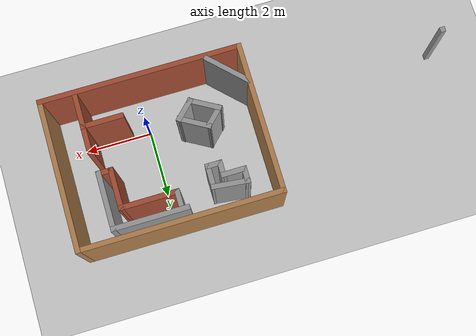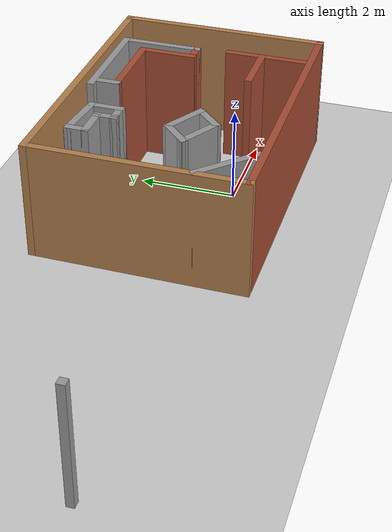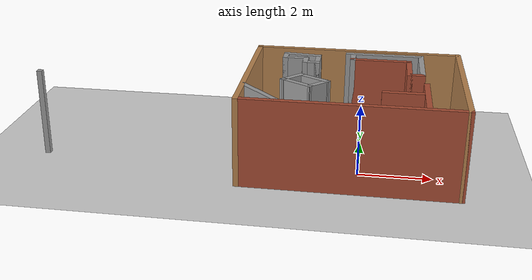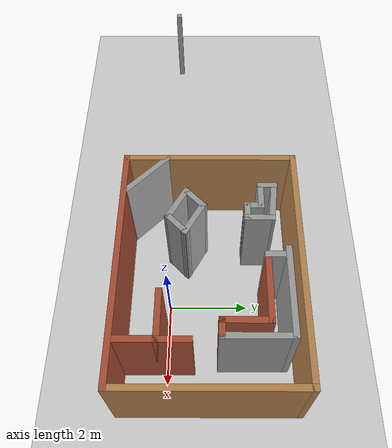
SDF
<sdf version="1.7">
 <world name="default">
  <light name="sun" type="directional">
   <pose>0 0 10 0 -0 0</pose>
   <diffuse>0.8 0.8 0.8 1</diffuse>
   <specular>0.2 0.2 0.2 1</specular>
   <attenuation>
    <range>1000</range>
    <constant>0.9</constant>
    <linear>0.01</linear>
    <quadratic>0.001</quadratic>
   </attenuation>
   <direction>-0.5 0.1 -0.9</direction>
   <spot><inner_angle>0</inner_angle><outer_angle>0</outer_angle><falloff>0</falloff></spot>
  </light>
  <model name="ground_plane">
   <static>1</static>
   <link name="link">
    <collision name="collision">
     <geometry><plane><normal>0 0 1</normal><size>100 100</size></plane></geometry>
     <surface>
      <contact><collide_bitmask>65535</collide_bitmask></contact>
      <friction><ode><mu>100</mu><mu2>50</mu2></ode></friction>
     </surface>
    </collision>
    <visual name="visual">
     <cast_shadows>0</cast_shadows>
     <geometry><plane><normal>0 0 1</normal><size>100 100</size></plane></geometry>
     <material>
      <script><uri>file://media/materials/scripts/gazebo.material</uri><name>Gazebo/Grey</name></script>
     </material>
    </visual>
   </link>
  </model>
  <gravity>0 0 -9.8</gravity>
  <magnetic_field>6e-06 2.3e-05 -4.2e-05</magnetic_field>
  <atmosphere type="adiabatic"/>
  <physics type="ode">
   <max_step_size>0.001</max_step_size>
   <real_time_factor>1</real_time_factor>
   <real_time_update_rate>1000</real_time_update_rate>
  </physics>
  <scene><ambient>0.4 0.4 0.4 1</ambient><background>0.7 0.7 0.7 1</background><shadows>1</shadows></scene>
  <audio><device>default</device></audio>
  <spherical_coordinates>
   <surface_model>EARTH_WGS84</surface_model>
   <latitude_deg>0</latitude_deg>
   <longitude_deg>0</longitude_deg>
   <elevation>0</elevation>
   <heading_deg>0</heading_deg>
  </spherical_coordinates>
  <model name="test_map">
   <pose>-3.15272 1.0311 0 0 -0 0</pose>
   <link name="Wall_17">
    <collision name="Wall_17_Collision">
     <geometry><box><size>0.15 0.15 2.5</size></box></geometry>
     <pose>0 0 1.25 0 -0 0</pose>
    </collision>
    <visual name="Wall_17_Visual">
     <pose>0 0 1.25 0 -0 0</pose>
     <geometry><box><size>0.15 0.15 2.5</size></box></geometry>
     <material>
      <script><uri>file://media/materials/scripts/gazebo.material</uri><name>Gazebo/Grey</name></script>
      <ambient>1 1 1 1</ambient>
     </material>
     <meta><layer>0</layer></meta>
    </visual>
    <pose>-5.7375 -0.985 0 0 -0 0</pose>
   </link>
   <link name="Wall_24">
    <collision name="Wall_24_Collision">
     <geometry><box><size>4.5 0.15 2.5</size></box></geometry>
     <pose>0 0 1.25 0 -0 0</pose>
    </collision>
    <visual name="Wall_24_Visual">
     <pose>0 0 1.25 0 -0 0</pose>
     <geometry><box><size>4.5 0.15 2.5</size></box></geometry>
     <material>
      <script><uri>file://media/materials/scripts/gazebo.material</uri><name>Gazebo/Wood</name></script>
      <ambient>1 1 1 1</ambient>
     </material>
     <meta><layer>0</layer></meta>
    </visual>
    <pose>-0.0075 -0 0 0 -0 -1.5708</pose>
   </link>
   <link name="Wall_25">
    <collision name="Wall_25_Collision">
     <geometry><box><size>6 0.15 2.5</size></box></geometry>
     <pose>0 0 1.25 0 -0 0</pose>
    </collision>
    <visual name="Wall_25_Visual">
     <pose>0 0 1.25 0 -0 0</pose>
     <geometry><box><size>6 0.15 2.5</size></box></geometry>
     <material>
      <script><uri>file://media/materials/scripts/gazebo.material</uri><name>Gazebo/Bricks</name></script>
      <ambient>1 1 1 1</ambient>
     </material>
     <meta><layer>0</layer></meta>
    </visual>
    <pose>2.9175 -2.175 0 0 -0 0</pose>
   </link>
   <link name="Wall_26">
    <collision name="Wall_26_Collision">
     <geometry><box><size>4.5 0.15 2.5</size></box></geometry>
     <pose>0 0 1.25 0 -0 0</pose>
    </collision>
    <visual name="Wall_26_Visual">
     <pose>0 0 1.25 0 -0 0</pose>
     <geometry><box><size>4.5 0.15 2.5</size></box></geometry>
     <material>
      <script><uri>file://media/materials/scripts/gazebo.material</uri><name>Gazebo/Wood</name></script>
      <ambient>1 1 1 1</ambient>
     </material>
     <meta><layer>0</layer></meta>
    </visual>
    <pose>5.8425 -0 0 0 -0 1.5708</pose>
   </link>
   <link name="Wall_27">
    <collision name="Wall_27_Collision">
     <geometry><box><size>6 0.15 2.5</size></box></geometry>
     <pose>0 0 1.25 0 -0 0</pose>
    </collision>
    <visual name="Wall_27_Visual">
     <pose>0 0 1.25 0 -0 0</pose>
     <geometry><box><size>6 0.15 2.5</size></box></geometry>
     <material>
      <script><uri>file://media/materials/scripts/gazebo.material</uri><name>Gazebo/Wood</name></script>
      <ambient>1 1 1 1</ambient>
     </material>
     <meta><layer>0</layer></meta>
    </visual>
    <pose>2.9175 2.175 0 0 -0 3.14159</pose>
   </link>
   <link name="Wall_29">
    <collision name="Wall_29_Collision">
     <geometry><box><size>0.5 0.15 2.5</size></box></geometry>
     <pose>0 0 1.25 0 -0 0</pose>
    </collision>
    <visual name="Wall_29_Visual">
     <pose>0 0 1.25 0 -0 0</pose>
     <geometry><box><size>0.5 0.15 2.5</size></box></geometry>
     <material>
      <script><uri>file://media/materials/scripts/gazebo.material</uri><name>Gazebo/Grey</name></script>
      <ambient>1 1 1 1</ambient>
     </material>
     <meta><layer>0</layer></meta>
    </visual>
    <pose>0.8625 1.46 0 0 -0 -1.5708</pose>
   </link>
   <link name="Wall_30">
    <collision name="Wall_30_Collision">
     <geometry><box><size>0.75 0.15 2.5</size></box></geometry>
     <pose>0 0 1.25 0 -0 0</pose>
    </collision>
    <visual name="Wall_30_Visual">
     <pose>0 0 1.25 0 -0 0</pose>
     <geometry><box><size>0.75 0.15 2.5</size></box></geometry>
     <material>
      <script><uri>file://media/materials/scripts/gazebo.material</uri><name>Gazebo/Grey</name></script>
      <ambient>1 1 1 1</ambient>
     </material>
     <meta><layer>0</layer></meta>
    </visual>
    <pose>1.1625 1.285 0 0 -0 0</pose>
   </link>
   <link name="Wall_31">
    <collision name="Wall_31_Collision">
     <geometry><box><size>0.5 0.15 2.5</size></box></geometry>
     <pose>0 0 1.25 0 -0 0</pose>
    </collision>
    <visual name="Wall_31_Visual">
     <pose>0 0 1.25 0 -0 0</pose>
     <geometry><box><size>0.5 0.15 2.5</size></box></geometry>
     <material>
      <script><uri>file://media/materials/scripts/gazebo.material</uri><name>Gazebo/Grey</name></script>
      <ambient>1 1 1 1</ambient>
     </material>
     <meta><layer>0</layer></meta>
    </visual>
    <pose>1.4625 1.11 0 0 -0 -1.5708</pose>
   </link>
   <link name="Wall_32">
    <collision name="Wall_32_Collision">
     <geometry><box><size>0.5 0.15 2.5</size></box></geometry>
     <pose>0 0 1.25 0 -0 0</pose>
    </collision>
    <visual name="Wall_32_Visual">
     <pose>0 0 1.25 0 -0 0</pose>
     <geometry><box><size>0.5 0.15 2.5</size></box></geometry>
     <material>
      <script><uri>file://media/materials/scripts/gazebo.material</uri><name>Gazebo/Grey</name></script>
      <ambient>1 1 1 1</ambient>
     </material>
     <meta><layer>0</layer></meta>
    </visual>
    <pose>1.6375 0.935 0 0 -0 0</pose>
   </link>
   <link name="Wall_33">
    <collision name="Wall_33_Collision">
     <geometry><box><size>0.75 0.15 2.5</size></box></geometry>
     <pose>0 0 1.25 0 -0 0</pose>
    </collision>
    <visual name="Wall_33_Visual">
     <pose>0 0 1.25 0 -0 0</pose>
     <geometry><box><size>0.75 0.15 2.5</size></box></geometry>
     <material>
      <script><uri>file://media/materials/scripts/gazebo.material</uri><name>Gazebo/Grey</name></script>
      <ambient>1 1 1 1</ambient>
     </material>
     <meta><layer>0</layer></meta>
    </visual>
    <pose>1.8125 1.235 0 0 -0 1.5708</pose>
   </link>
   <link name="Wall_34">
    <collision name="Wall_34_Collision">
     <geometry><box><size>1.10525 0.15 2.5</size></box></geometry>
     <pose>0 0 1.25 0 -0 0</pose>
    </collision>
    <visual name="Wall_34_Visual">
     <pose>0 0 1.25 0 -0 0</pose>
     <geometry><box><size>1.10525 0.15 2.5</size></box></geometry>
     <material>
      <script><uri>file://media/materials/scripts/gazebo.material</uri><name>Gazebo/Grey</name></script>
      <ambient>1 1 1 1</ambient>
     </material>
     <meta><layer>0</layer></meta>
    </visual>
    <pose>1.3375 1.585 0 0 -0 3.03672</pose>
   </link>
   <link name="Wall_36">
    <collision name="Wall_36_Collision">
     <geometry><box><size>0.5 0.15 2.5</size></box></geometry>
     <pose>0 0 1.25 0 -0 0</pose>
    </collision>
    <visual name="Wall_36_Visual">
     <pose>0 0 1.25 0 -0 0</pose>
     <geometry><box><size>0.5 0.15 2.5</size></box></geometry>
     <material>
      <script><uri>file://media/materials/scripts/gazebo.material</uri><name>Gazebo/Grey</name></script>
      <ambient>1 1 1 1</ambient>
     </material>
     <meta><layer>0</layer></meta>
    </visual>
    <pose>2.8125 1.55 0 0 -0 -1.5708</pose>
   </link>
   <link name="Wall_37">
    <collision name="Wall_37_Collision">
     <geometry><box><size>1.75 0.15 2.5</size></box></geometry>
     <pose>0 0 1.25 0 -0 0</pose>
    </collision>
    <visual name="Wall_37_Visual">
     <pose>0 0 1.25 0 -0 0</pose>
     <geometry><box><size>1.75 0.15 2.5</size></box></geometry>
     <material>
      <script><uri>file://media/materials/scripts/gazebo.material</uri><name>Gazebo/Bricks</name></script>
      <ambient>1 1 1 1</ambient>
     </material>
     <meta><layer>0</layer></meta>
    </visual>
    <pose>3.6125 1.375 0 0 -0 0</pose>
   </link>
   <link name="Wall_38">
    <collision name="Wall_38_Collision">
     <geometry><box><size>1.25 0.15 2.5</size></box></geometry>
     <pose>0 0 1.25 0 -0 0</pose>
    </collision>
    <visual name="Wall_38_Visual">
     <pose>0 0 1.25 0 -0 0</pose>
     <geometry><box><size>1.25 0.15 2.5</size></box></geometry>
     <material>
      <script><uri>file://media/materials/scripts/gazebo.material</uri><name>Gazebo/Bricks</name></script>
      <ambient>1 1 1 1</ambient>
     </material>
     <meta><layer>0</layer></meta>
    </visual>
    <pose>4.4125 0.825 0 0 -0 -1.5708</pose>
   </link>
   <link name="Wall_39">
    <collision name="Wall_39_Collision">
     <geometry><box><size>0.5 0.15 2.5</size></box></geometry>
     <pose>0 0 1.25 0 -0 0</pose>
    </collision>
    <visual name="Wall_39_Visual">
     <pose>0 0 1.25 0 -0 0</pose>
     <geometry><box><size>0.5 0.15 2.5</size></box></geometry>
     <material>
      <script><uri>file://media/materials/scripts/gazebo.material</uri><name>Gazebo/Bricks</name></script>
      <ambient>1 1 1 1</ambient>
     </material>
     <meta><layer>0</layer></meta>
    </visual>
    <pose>4.5875 0.275 0 0 -0 0</pose>
   </link>
   <link name="Wall_40">
    <collision name="Wall_40_Collision">
     <geometry><box><size>1.75 0.15 2.5</size></box></geometry>
     <pose>0 0 1.25 0 -0 0</pose>
    </collision>
    <visual name="Wall_40_Visual">
     <pose>0 0 1.25 0 -0 0</pose>
     <geometry><box><size>1.75 0.15 2.5</size></box></geometry>
     <material>
      <script><uri>file://media/materials/scripts/gazebo.material</uri><name>Gazebo/Grey</name></script>
      <ambient>1 1 1 1</ambient>
     </material>
     <meta><layer>0</layer></meta>
    </visual>
    <pose>4.7625 1.075 0 0 -0 1.5708</pose>
   </link>
   <link name="Wall_41">
    <collision name="Wall_41_Collision">
     <geometry><box><size>2.25 0.15 2.5</size></box></geometry>
     <pose>0 0 1.25 0 -0 0</pose>
    </collision>
    <visual name="Wall_41_Visual">
     <pose>0 0 1.25 0 -0 0</pose>
     <geometry><box><size>2.25 0.15 2.5</size></box></geometry>
     <material>
      <script><uri>file://media/materials/scripts/gazebo.material</uri><name>Gazebo/Grey</name></script>
      <ambient>1 1 1 1</ambient>
     </material>
     <meta><layer>0</layer></meta>
    </visual>
    <pose>3.7125 1.875 0 0 -0 3.14159</pose>
   </link>
   <link name="Wall_43">
    <collision name="Wall_43_Collision">
     <geometry><box><size>0.75 0.15 2.5</size></box></geometry>
     <pose>0 0 1.25 0 -0 0</pose>
    </collision>
    <visual name="Wall_43_Visual">
     <pose>0 0 1.25 0 -0 0</pose>
     <geometry><box><size>0.75 0.15 2.5</size></box></geometry>
     <material>
      <script><uri>file://media/materials/scripts/gazebo.material</uri><name>Gazebo/Grey</name></script>
      <ambient>1 1 1 1</ambient>
     </material>
     <meta><layer>0</layer></meta>
    </visual>
    <pose>1.25037 -0.377132 0 0 -0 -2.35619</pose>
   </link>
   <link name="Wall_44">
    <collision name="Wall_44_Collision">
     <geometry><box><size>1 0.15 2.5</size></box></geometry>
     <pose>0 0 1.25 0 -0 0</pose>
    </collision>
    <visual name="Wall_44_Visual">
     <pose>0 0 1.25 0 -0 0</pose>
     <geometry><box><size>1 0.15 2.5</size></box></geometry>
     <material>
      <script><uri>file://media/materials/scripts/gazebo.material</uri><name>Gazebo/Grey</name></script>
      <ambient>1 1 1 1</ambient>
     </material>
     <meta><layer>0</layer></meta>
    </visual>
    <pose>1.4063 -0.801764 0 0 -0 -0.523599</pose>
   </link>
   <link name="Wall_45">
    <collision name="Wall_45_Collision">
     <geometry><box><size>0.75 0.15 2.5</size></box></geometry>
     <pose>0 0 1.25 0 -0 0</pose>
    </collision>
    <visual name="Wall_45_Visual">
     <pose>0 0 1.25 0 -0 0</pose>
     <geometry><box><size>0.75 0.15 2.5</size></box></geometry>
     <material>
      <script><uri>file://media/materials/scripts/gazebo.material</uri><name>Gazebo/Grey</name></script>
      <ambient>1 1 1 1</ambient>
     </material>
     <meta><layer>0</layer></meta>
    </visual>
    <pose>1.98649 -0.802132 0 0 -0 0.785398</pose>
   </link>
   <link name="Wall_46">
    <collision name="Wall_46_Collision">
     <geometry><box><size>1 0.15 2.5</size></box></geometry>
     <pose>0 0 1.25 0 -0 0</pose>
    </collision>
    <visual name="Wall_46_Visual">
     <pose>0 0 1.25 0 -0 0</pose>
     <geometry><box><size>1 0.15 2.5</size></box></geometry>
     <material>
      <script><uri>file://media/materials/scripts/gazebo.material</uri><name>Gazebo/Grey</name></script>
      <ambient>1 1 1 1</ambient>
     </material>
     <meta><layer>0</layer></meta>
    </visual>
    <pose>1.83056 -0.3775 0 0 -0 2.61799</pose>
   </link>
   <link name="Wall_48">
    <collision name="Wall_48_Collision">
     <geometry><box><size>1.75 0.15 2.5</size></box></geometry>
     <pose>0 0 1.25 0 -0 0</pose>
    </collision>
    <visual name="Wall_48_Visual">
     <pose>0 0 1.25 0 -0 0</pose>
     <geometry><box><size>1.75 0.15 2.5</size></box></geometry>
     <material>
      <script><uri>file://media/materials/scripts/gazebo.material</uri><name>Gazebo/Bricks</name></script>
      <ambient>1 1 1 1</ambient>
     </material>
     <meta><layer>0</layer></meta>
    </visual>
    <pose>4.8425 -1.235 0 0 -0 -1.5708</pose>
   </link>
   <link name="Wall_50">
    <collision name="Wall_50_Collision">
     <geometry><box><size>1.25 0.15 2.5</size></box></geometry>
     <pose>0 0 1.25 0 -0 0</pose>
    </collision>
    <visual name="Wall_50_Visual">
     <pose>0 0 1.25 0 -0 0</pose>
     <geometry><box><size>1.25 0.15 2.5</size></box></geometry>
     <material>
      <script><uri>file://media/materials/scripts/gazebo.material</uri><name>Gazebo/Bricks</name></script>
      <ambient>1 1 1 1</ambient>
     </material>
     <meta><layer>0</layer></meta>
    </visual>
    <pose>4.2925 -1.145 0 0 -0 3.14159</pose>
   </link>
   <link name="Wall_52">
    <collision name="Wall_52_Collision">
     <geometry><box><size>1.5 0.15 2.5</size></box></geometry>
     <pose>0 0 1.25 0 -0 0</pose>
    </collision>
    <visual name="Wall_52_Visual">
     <pose>0 0 1.25 0 -0 0</pose>
     <geometry><box><size>1.5 0.15 2.5</size></box></geometry>
     <material>
      <script><uri>file://media/materials/scripts/gazebo.material</uri><name>Gazebo/Grey</name></script>
      <ambient>1 1 1 1</ambient>
     </material>
     <meta><layer>0</layer></meta>
    </visual>
    <pose>0.499797 -1.6023 0 0 -0 -0.785398</pose>
   </link>
   <static>1</static>
  </model>
 </world>
</sdf>
